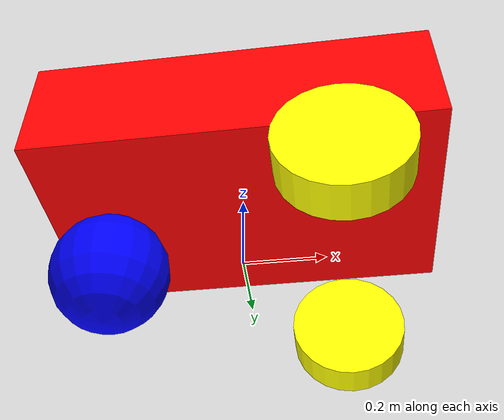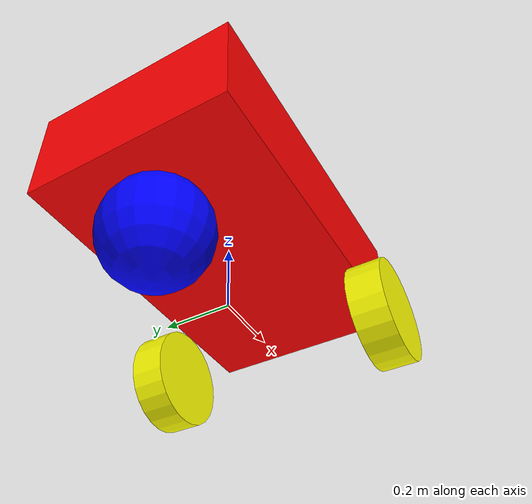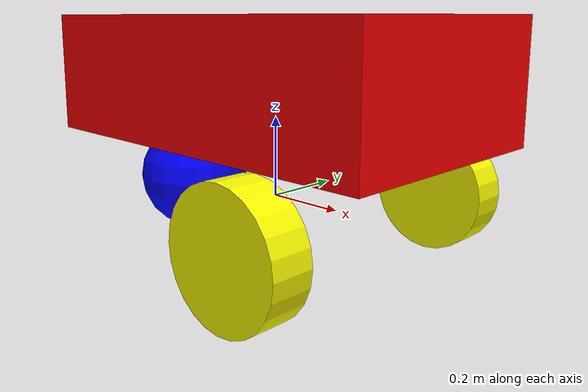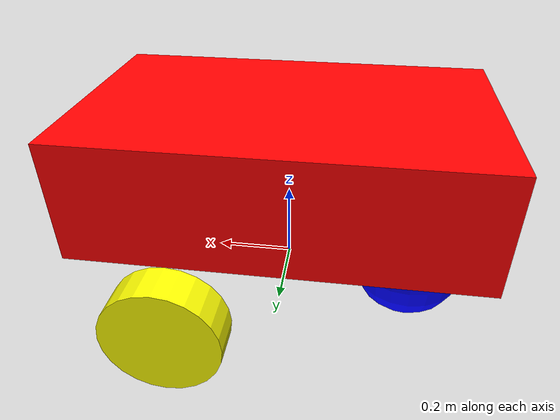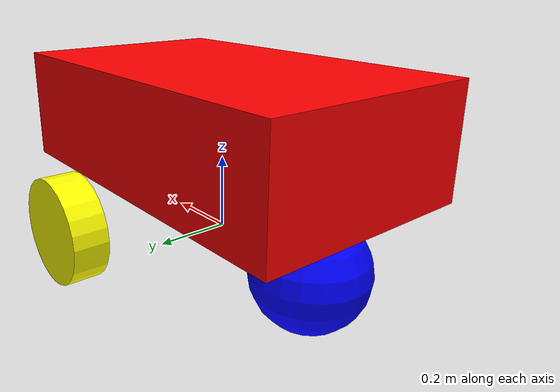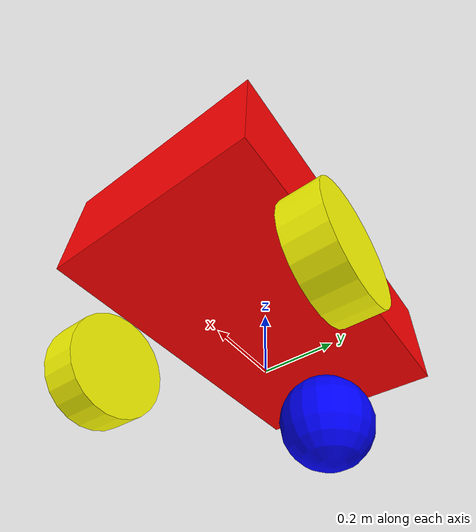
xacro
<?xml version="1.0"?>

<robot name="differential_drive_robot" xmlns:xacro="http://www.ros.org/wiki/xacro">

<!-- robot constants -->
<xacro:property name="pi_const" value="3.14159265"/>

<!-- body dimensions -->
<xacro:property name="a" value="1"/>
<xacro:property name="b" value="0.3"/>
<xacro:property name="c" value="0.6"/>

<!-- wheel dimensions -->
<xacro:property name="r" value="0.15"/>
<xacro:property name="d" value="0.1"/>

<!-- caster dimensions -->
<xacro:property name="caster_radius" value="${r}"/>  <!-- Same size as drive wheels: 0.15 -->

<xacro:property name="s1" value="${b/2 + r}"/>
<xacro:property name="s2" value="${2*r}"/>
<xacro:property name="s3" value="${2*r}"/>
<xacro:property name="s4" value="${c/2 + d/2}"/>

<!-- mass and inertia properties -->
<xacro:property name="d1" value="2710.0"/>
<xacro:property name="d2" value="2710.0"/>
<xacro:property name="d3" value="2710.0"/>

<xacro:property name="m1" value="${d1*a*b*c}"/>
<xacro:property name="m2" value="${d2*pi_const*r*r*d}"/>
<xacro:property name="m3" value="${d3*(4.0/3.0)*pi_const*caster_radius*caster_radius*caster_radius}"/>

<xacro:property name="Ix_body" value="${(1.0/12.0)*m1*(c*c + b*b)}"/>
<xacro:property name="Iy_body" value="${(1.0/12.0)*m1*(a*a + c*c)}"/>
<xacro:property name="Iz_body" value="${(1.0/12.0)*m1*(a*a + b*b)}"/>

<xacro:property name="Iz_wheel" value="${(1.0/2.0)*m2*r*r}"/>
<xacro:property name="I_wheel" value="${(1.0/12.0)*m2*(3.0*r*r + d*d)}"/>

<xacro:property name="I_caster" value="${(2.0/5.0)*m3*(caster_radius*caster_radius)}"/>

<!-- Inertial macros -->
<xacro:macro name="inertial_body">
    <inertial>
        <origin rpy="0 0 0" xyz="0 0 0"/>
        <mass value="${m1}"/>
        <inertia ixx="${Ix_body}" ixy="0.0" ixz="0.0" iyy="${Iy_body}" iyz="0.0" izz="${Iz_body}"/>
    </inertial>
</xacro:macro>

<xacro:macro name="inertial_wheel">
    <inertial>
        <origin rpy="0 0 0" xyz="0 0 0"/>
        <mass value="${m2}"/>
        <inertia ixx="${I_wheel}" ixy="0.0" ixz="0.0" iyy="${I_wheel}" iyz="0.0" izz="${Iz_wheel}"/>
    </inertial>
</xacro:macro>

<xacro:macro name="inertial_caster">
    <inertial>
        <origin rpy="0 0 0" xyz="0 0 0"/>
        <mass value="${m3}"/>
        <inertia ixx="${I_caster}" ixy="0.0" ixz="0.0" iyy="${I_caster}" iyz="0.0" izz="${I_caster}"/>
    </inertial>
</xacro:macro>

<!-- Gazebo options -->
<xacro:include filename="$(find mobile_robot)/model/robot.gazebo"/>

<!-- Base footprint (ground reference) -->
<link name="base_footprint"></link>

<joint name="body_link_joint" type="fixed">
    <parent link="base_footprint"/>
    <child link="body_link"/>
    <origin xyz="0 0 ${r}" rpy="0 0 0"/>
</joint>

<!-- Body link -->
<link name="body_link">
    <visual>
        <geometry>
            <box size="${a} ${c} ${b}"/>
        </geometry>
        <origin rpy="0 0 0" xyz="0 0 ${b/2}"/>
        <material name="red">
            <color rgba="1 0 0 1"/>
        </material>
    </visual>

    <collision>
        <geometry>
            <box size="${a} ${c} ${b}"/>
        </geometry>
        <origin rpy="0 0 0" xyz="0 0 ${b/2}"/>
    </collision>
    <xacro:inertial_body/>
</link>

<!-- RIGHT WHEEL (wheel1) -->
<joint name="wheel1_joint" type="continuous">
    <parent link="body_link"/>
    <child link="wheel1_link"/>
    <origin rpy="0 0 0" xyz="${a/4} ${-(c/2 + d/2)} ${-b/2}"/>
    <axis xyz="0 1 0"/>
    <limit effort="50000" velocity="10"/>
    <dynamics damping="1.0" friction="1.0"/>
</joint>

<link name="wheel1_link">
    <visual>
        <origin rpy="1.570795 0 0" xyz="0 0 0"/>
        <geometry>
            <cylinder length="${d}" radius="${r}"/>
        </geometry>
        <material name="yellow">
            <color rgba="1 1 0 1"/>
        </material>
    </visual>
    <collision>
        <origin rpy="1.570795 0 0" xyz="0 0 0"/>
        <geometry>
            <cylinder length="${d}" radius="${r}"/>
        </geometry>
    </collision>
    <xacro:inertial_wheel/>
</link>

<!-- LEFT WHEEL (wheel2) -->
<joint name="wheel2_joint" type="continuous">
    <parent link="body_link"/>
    <child link="wheel2_link"/>
    <origin rpy="0 0 0" xyz="${a/4} ${c/2 + d/2} ${-b/2}"/>
    <axis xyz="0 1 0"/>
    <limit effort="50000" velocity="10"/>
    <dynamics damping="1.0" friction="1.0"/>
</joint>

<link name="wheel2_link">
    <visual>
        <origin rpy="1.570795 0 0" xyz="0 0 0"/>
        <geometry>
            <cylinder length="${d}" radius="${r}"/>
        </geometry>
        <material name="yellow">
            <color rgba="1 1 0 1"/>
        </material>
    </visual>
    <collision>
        <origin rpy="1.570795 0 0" xyz="0 0 0"/>
        <geometry>
            <cylinder length="${d}" radius="${r}"/>
        </geometry>
    </collision>
    <xacro:inertial_wheel/>
</link>

<!-- CASTER WHEEL (front) -->
<!-- CASTER WHEEL (back) -->
<joint name="caster_joint" type="fixed">
    <parent link="body_link"/>
    <child link="caster_link"/>
    <origin rpy="0 0 0" xyz="${-a/3} 0 ${-b/2}"/>  <!-- Positioned at back, touching ground -->
</joint>

<link name="caster_link">
    <visual>
        <origin rpy="0 0 0" xyz="0 0 0"/>
        <geometry>
            <sphere radius="${caster_radius}"/>
        </geometry>
        <material name="blue">
            <color rgba="0 0 1 1"/>
        </material>
    </visual>
    <collision>
        <origin rpy="0 0 0" xyz="0 0 0"/>
        <geometry>
            <sphere radius="${caster_radius}"/>
        </geometry>
        <surface>
            <friction>
                <ode>
                    <mu>0.01</mu>
                    <mu2>0.01</mu2>
                </ode>
            </friction>
        </surface>
    </collision>
    <xacro:inertial_caster/>
</link>

</robot>
